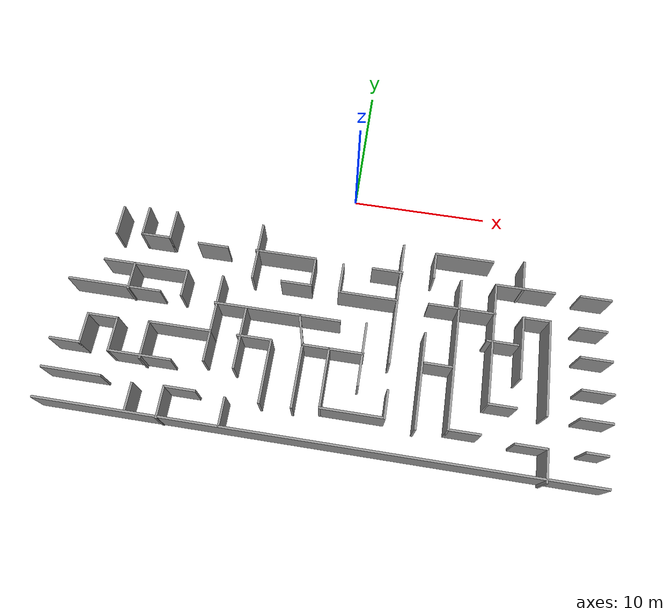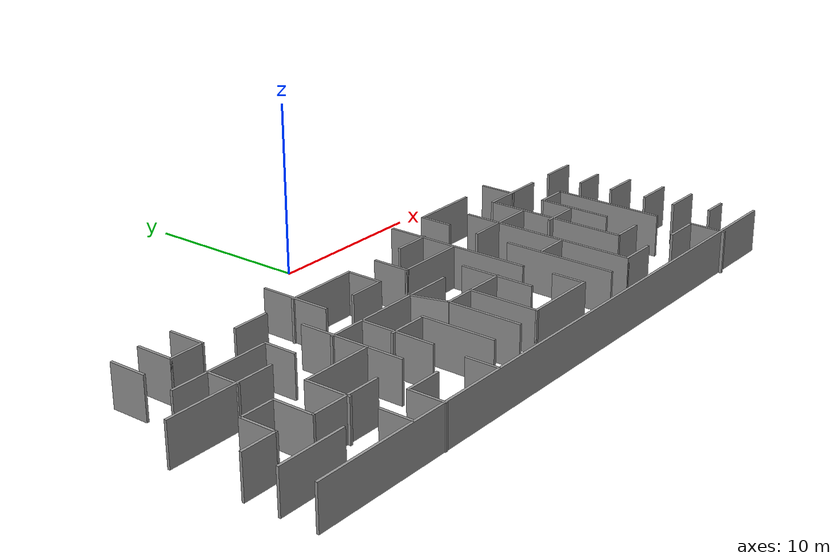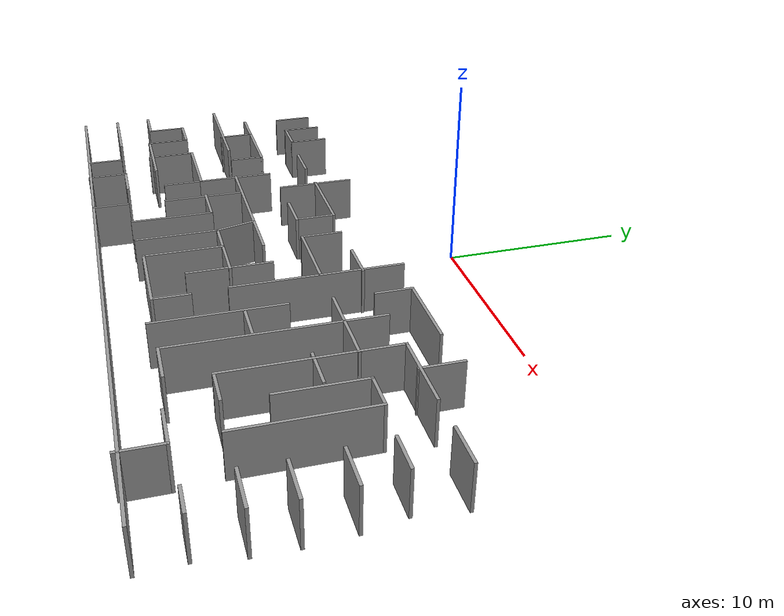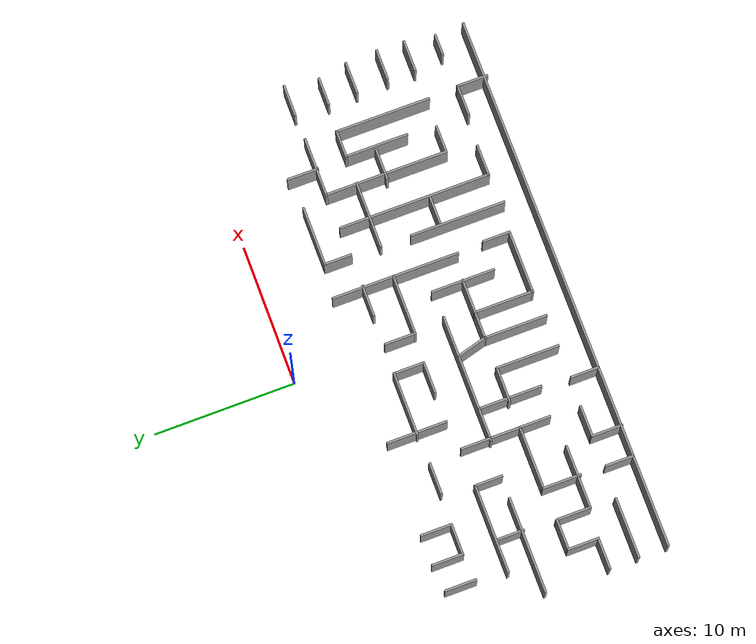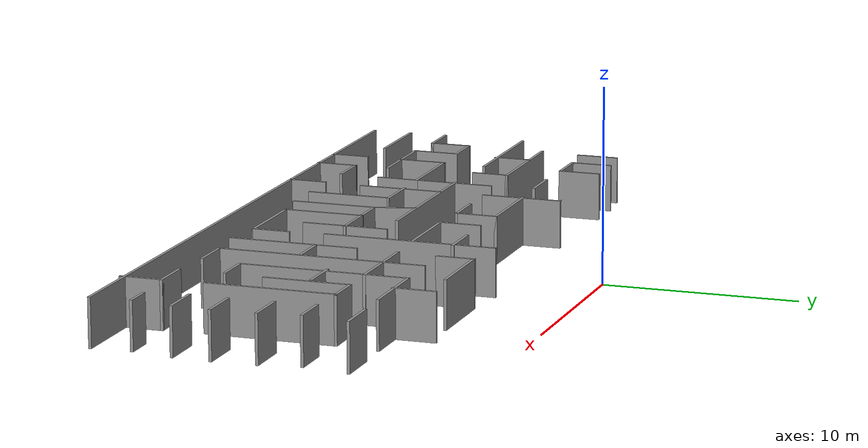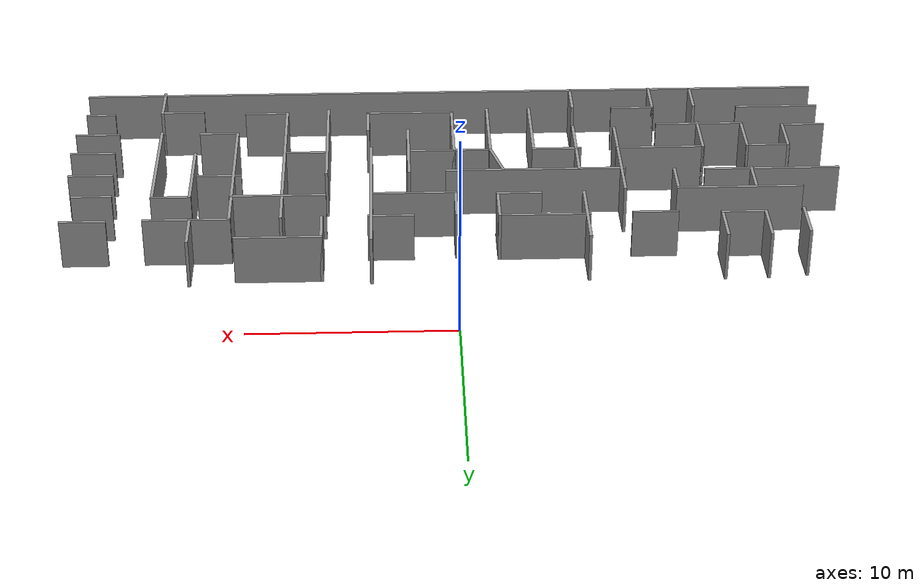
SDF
<sdf version="1.7">
 <model name="complex_maze">
  <pose>-0.002641 -0.038098 0 0 -0 0</pose>
  <link name="Wall_102">
   <collision name="Wall_102_Collision">
    <geometry><box><size>2.25 0.15 2.5</size></box></geometry>
    <pose>0 0 1.25 0 -0 0</pose>
   </collision>
   <visual name="Wall_102_Visual">
    <pose>0 0 1.25 0 -0 0</pose>
    <geometry><box><size>2.25 0.15 2.5</size></box></geometry>
    <material>
     <script><uri>file://media/materials/scripts/gazebo.material</uri><name>Gazebo/Grey</name></script>
     <ambient>1 1 1 1</ambient>
    </material>
    <meta><layer>0</layer></meta>
   </visual>
   <pose>17.9724 -6.21477 0 0 -0 0</pose>
  </link>
  <link name="Wall_104">
   <collision name="Wall_104_Collision">
    <geometry><box><size>2.25 0.15 2.5</size></box></geometry>
    <pose>0 0 1.25 0 -0 0</pose>
   </collision>
   <visual name="Wall_104_Visual">
    <pose>0 0 1.25 0 -0 0</pose>
    <geometry><box><size>2.25 0.15 2.5</size></box></geometry>
    <material>
     <script><uri>file://media/materials/scripts/gazebo.material</uri><name>Gazebo/Grey</name></script>
     <ambient>1 1 1 1</ambient>
    </material>
    <meta><layer>0</layer></meta>
   </visual>
   <pose>18.0336 -10.6809 0 0 -0 0</pose>
  </link>
  <link name="Wall_106">
   <collision name="Wall_106_Collision">
    <geometry><box><size>2.25 0.15 2.5</size></box></geometry>
    <pose>0 0 1.25 0 -0 0</pose>
   </collision>
   <visual name="Wall_106_Visual">
    <pose>0 0 1.25 0 -0 0</pose>
    <geometry><box><size>2.25 0.15 2.5</size></box></geometry>
    <material>
     <script><uri>file://media/materials/scripts/gazebo.material</uri><name>Gazebo/Grey</name></script>
     <ambient>1 1 1 1</ambient>
    </material>
    <meta><layer>0</layer></meta>
   </visual>
   <pose>18.1559 -12.9446 0 0 -0 0</pose>
  </link>
  <link name="Wall_108">
   <collision name="Wall_108_Collision">
    <geometry><box><size>2.25 0.15 2.5</size></box></geometry>
    <pose>0 0 1.25 0 -0 0</pose>
   </collision>
   <visual name="Wall_108_Visual">
    <pose>0 0 1.25 0 -0 0</pose>
    <geometry><box><size>2.25 0.15 2.5</size></box></geometry>
    <material>
     <script><uri>file://media/materials/scripts/gazebo.material</uri><name>Gazebo/Grey</name></script>
     <ambient>1 1 1 1</ambient>
    </material>
    <meta><layer>0</layer></meta>
   </visual>
   <pose>18.0947 -14.9024 0 0 -0 0</pose>
  </link>
  <link name="Wall_110">
   <collision name="Wall_110_Collision">
    <geometry><box><size>1.5 0.15 2.5</size></box></geometry>
    <pose>0 0 1.25 0 -0 0</pose>
   </collision>
   <visual name="Wall_110_Visual">
    <pose>0 0 1.25 0 -0 0</pose>
    <geometry><box><size>1.5 0.15 2.5</size></box></geometry>
    <material>
     <script><uri>file://media/materials/scripts/gazebo.material</uri><name>Gazebo/Grey</name></script>
     <ambient>1 1 1 1</ambient>
    </material>
    <meta><layer>0</layer></meta>
   </visual>
   <pose>18.148 -17.0437 0 0 -0 0</pose>
  </link>
  <link name="Wall_112">
   <collision name="Wall_112_Collision">
    <geometry><box><size>2 0.15 2.5</size></box></geometry>
    <pose>0 0 1.25 0 -0 0</pose>
   </collision>
   <visual name="Wall_112_Visual">
    <pose>0 0 1.25 0 -0 0</pose>
    <geometry><box><size>2 0.15 2.5</size></box></geometry>
    <material>
     <script><uri>file://media/materials/scripts/gazebo.material</uri><name>Gazebo/Grey</name></script>
     <ambient>1 1 1 1</ambient>
    </material>
    <meta><layer>0</layer></meta>
   </visual>
   <pose>17.7862 -8.60081 0 0 -0 0</pose>
  </link>
  <link name="Wall_114">
   <collision name="Wall_114_Collision">
    <geometry><box><size>2.25 0.15 2.5</size></box></geometry>
    <pose>0 0 1.25 0 -0 0</pose>
   </collision>
   <visual name="Wall_114_Visual">
    <pose>0 0 1.25 0 -0 0</pose>
    <geometry><box><size>2.25 0.15 2.5</size></box></geometry>
    <material>
     <script><uri>file://media/materials/scripts/gazebo.material</uri><name>Gazebo/Grey</name></script>
     <ambient>1 1 1 1</ambient>
    </material>
    <meta><layer>0</layer></meta>
   </visual>
   <pose>14.9646 -18.2574 0 0 -0 1.5708</pose>
  </link>
  <link name="Wall_115">
   <collision name="Wall_115_Collision">
    <geometry><box><size>2.25 0.15 2.5</size></box></geometry>
    <pose>0 0 1.25 0 -0 0</pose>
   </collision>
   <visual name="Wall_115_Visual">
    <pose>0 0 1.25 0 -0 0</pose>
    <geometry><box><size>2.25 0.15 2.5</size></box></geometry>
    <material>
     <script><uri>file://media/materials/scripts/gazebo.material</uri><name>Gazebo/Grey</name></script>
     <ambient>1 1 1 1</ambient>
    </material>
    <meta><layer>0</layer></meta>
   </visual>
   <pose>13.9146 -17.2074 0 0 -0 3.14159</pose>
  </link>
  <link name="Wall_117">
   <collision name="Wall_117_Collision">
    <geometry><box><size>2 0.15 2.5</size></box></geometry>
    <pose>0 0 1.25 0 -0 0</pose>
   </collision>
   <visual name="Wall_117_Visual">
    <pose>0 0 1.25 0 -0 0</pose>
    <geometry><box><size>2 0.15 2.5</size></box></geometry>
    <material>
     <script><uri>file://media/materials/scripts/gazebo.material</uri><name>Gazebo/Grey</name></script>
     <ambient>1 1 1 1</ambient>
    </material>
    <meta><layer>0</layer></meta>
   </visual>
   <pose>-6.45183 -18.144 0 0 -0 1.5708</pose>
  </link>
  <link name="Wall_119">
   <collision name="Wall_119_Collision">
    <geometry><box><size>2.25 0.15 2.5</size></box></geometry>
    <pose>0 0 1.25 0 -0 0</pose>
   </collision>
   <visual name="Wall_119_Visual">
    <pose>0 0 1.25 0 -0 0</pose>
    <geometry><box><size>2.25 0.15 2.5</size></box></geometry>
    <material>
     <script><uri>file://media/materials/scripts/gazebo.material</uri><name>Gazebo/Grey</name></script>
     <ambient>1 1 1 1</ambient>
    </material>
    <meta><layer>0</layer></meta>
   </visual>
   <pose>-10.639 -18.112 0 0 -0 1.5708</pose>
  </link>
  <link name="Wall_120">
   <collision name="Wall_120_Collision">
    <geometry><box><size>2.25 0.15 2.5</size></box></geometry>
    <pose>0 0 1.25 0 -0 0</pose>
   </collision>
   <visual name="Wall_120_Visual">
    <pose>0 0 1.25 0 -0 0</pose>
    <geometry><box><size>2.25 0.15 2.5</size></box></geometry>
    <material>
     <script><uri>file://media/materials/scripts/gazebo.material</uri><name>Gazebo/Grey</name></script>
     <ambient>1 1 1 1</ambient>
    </material>
    <meta><layer>0</layer></meta>
   </visual>
   <pose>-9.58898 -17.062 0 0 -0 0</pose>
  </link>
  <link name="Wall_122">
   <collision name="Wall_122_Collision">
    <geometry><box><size>2 0.15 2.5</size></box></geometry>
    <pose>0 0 1.25 0 -0 0</pose>
   </collision>
   <visual name="Wall_122_Visual">
    <pose>0 0 1.25 0 -0 0</pose>
    <geometry><box><size>2 0.15 2.5</size></box></geometry>
    <material>
     <script><uri>file://media/materials/scripts/gazebo.material</uri><name>Gazebo/Grey</name></script>
     <ambient>1 1 1 1</ambient>
    </material>
    <meta><layer>0</layer></meta>
   </visual>
   <pose>-12.8256 -18.144 0 0 -0 1.5708</pose>
  </link>
  <link name="Wall_124">
   <collision name="Wall_124_Collision">
    <geometry><box><size>4.25 0.15 2.5</size></box></geometry>
    <pose>0 0 1.25 0 -0 0</pose>
   </collision>
   <visual name="Wall_124_Visual">
    <pose>0 0 1.25 0 -0 0</pose>
    <geometry><box><size>4.25 0.15 2.5</size></box></geometry>
    <material>
     <script><uri>file://media/materials/scripts/gazebo.material</uri><name>Gazebo/Grey</name></script>
     <ambient>1 1 1 1</ambient>
    </material>
    <meta><layer>0</layer></meta>
   </visual>
   <pose>-17.1494 -17.0219 0 0 -0 0</pose>
  </link>
  <link name="Wall_126">
   <collision name="Wall_126_Collision">
    <geometry><box><size>2.25 0.15 2.5</size></box></geometry>
    <pose>0 0 1.25 0 -0 0</pose>
   </collision>
   <visual name="Wall_126_Visual">
    <pose>0 0 1.25 0 -0 0</pose>
    <geometry><box><size>2.25 0.15 2.5</size></box></geometry>
    <material>
     <script><uri>file://media/materials/scripts/gazebo.material</uri><name>Gazebo/Grey</name></script>
     <ambient>1 1 1 1</ambient>
    </material>
    <meta><layer>0</layer></meta>
   </visual>
   <pose>-18.1959 -14.9749 0 0 -0 0</pose>
  </link>
  <link name="Wall_127">
   <collision name="Wall_127_Collision">
    <geometry><box><size>2.25 0.15 2.5</size></box></geometry>
    <pose>0 0 1.25 0 -0 0</pose>
   </collision>
   <visual name="Wall_127_Visual">
    <pose>0 0 1.25 0 -0 0</pose>
    <geometry><box><size>2.25 0.15 2.5</size></box></geometry>
    <material>
     <script><uri>file://media/materials/scripts/gazebo.material</uri><name>Gazebo/Grey</name></script>
     <ambient>1 1 1 1</ambient>
    </material>
    <meta><layer>0</layer></meta>
   </visual>
   <pose>-17.1459 -13.9249 0 0 -0 1.5708</pose>
  </link>
  <link name="Wall_128">
   <collision name="Wall_128_Collision">
    <geometry><box><size>2.25 0.15 2.5</size></box></geometry>
    <pose>0 0 1.25 0 -0 0</pose>
   </collision>
   <visual name="Wall_128_Visual">
    <pose>0 0 1.25 0 -0 0</pose>
    <geometry><box><size>2.25 0.15 2.5</size></box></geometry>
    <material>
     <script><uri>file://media/materials/scripts/gazebo.material</uri><name>Gazebo/Grey</name></script>
     <ambient>1 1 1 1</ambient>
    </material>
    <meta><layer>0</layer></meta>
   </visual>
   <pose>-16.0959 -12.8749 0 0 -0 0</pose>
  </link>
  <link name="Wall_129">
   <collision name="Wall_129_Collision">
    <geometry><box><size>2.5 0.15 2.5</size></box></geometry>
    <pose>0 0 1.25 0 -0 0</pose>
   </collision>
   <visual name="Wall_129_Visual">
    <pose>0 0 1.25 0 -0 0</pose>
    <geometry><box><size>2.5 0.15 2.5</size></box></geometry>
    <material>
     <script><uri>file://media/materials/scripts/gazebo.material</uri><name>Gazebo/Grey</name></script>
     <ambient>1 1 1 1</ambient>
    </material>
    <meta><layer>0</layer></meta>
   </visual>
   <pose>-15.0459 -14.0499 0 0 -0 -1.5708</pose>
  </link>
  <link name="Wall_130">
   <collision name="Wall_130_Collision">
    <geometry><box><size>4.5 0.15 2.5</size></box></geometry>
    <pose>0 0 1.25 0 -0 0</pose>
   </collision>
   <visual name="Wall_130_Visual">
    <pose>0 0 1.25 0 -0 0</pose>
    <geometry><box><size>4.5 0.15 2.5</size></box></geometry>
    <material>
     <script><uri>file://media/materials/scripts/gazebo.material</uri><name>Gazebo/Grey</name></script>
     <ambient>1 1 1 1</ambient>
    </material>
    <meta><layer>0</layer></meta>
   </visual>
   <pose>-12.8709 -15.2249 0 0 -0 0</pose>
  </link>
  <link name="Wall_132">
   <collision name="Wall_132_Collision">
    <geometry><box><size>2.75 0.15 2.5</size></box></geometry>
    <pose>0 0 1.25 0 -0 0</pose>
   </collision>
   <visual name="Wall_132_Visual">
    <pose>0 0 1.25 0 -0 0</pose>
    <geometry><box><size>2.75 0.15 2.5</size></box></geometry>
    <material>
     <script><uri>file://media/materials/scripts/gazebo.material</uri><name>Gazebo/Grey</name></script>
     <ambient>1 1 1 1</ambient>
    </material>
    <meta><layer>0</layer></meta>
   </visual>
   <pose>-12.7791 -14.0936 0 0 -0 1.5708</pose>
  </link>
  <link name="Wall_133">
   <collision name="Wall_133_Collision">
    <geometry><box><size>4.5 0.15 2.5</size></box></geometry>
    <pose>0 0 1.25 0 -0 0</pose>
   </collision>
   <visual name="Wall_133_Visual">
    <pose>0 0 1.25 0 -0 0</pose>
    <geometry><box><size>4.5 0.15 2.5</size></box></geometry>
    <material>
     <script><uri>file://media/materials/scripts/gazebo.material</uri><name>Gazebo/Grey</name></script>
     <ambient>1 1 1 1</ambient>
    </material>
    <meta><layer>0</layer></meta>
   </visual>
   <pose>-10.6041 -12.7936 0 0 -0 0</pose>
  </link>
  <link name="Wall_134">
   <collision name="Wall_134_Collision">
    <geometry><box><size>4.25 0.15 2.5</size></box></geometry>
    <pose>0 0 1.25 0 -0 0</pose>
   </collision>
   <visual name="Wall_134_Visual">
    <pose>0 0 1.25 0 -0 0</pose>
    <geometry><box><size>4.25 0.15 2.5</size></box></geometry>
    <material>
     <script><uri>file://media/materials/scripts/gazebo.material</uri><name>Gazebo/Grey</name></script>
     <ambient>1 1 1 1</ambient>
    </material>
    <meta><layer>0</layer></meta>
   </visual>
   <pose>-8.42908 -10.7436 0 0 -0 1.5708</pose>
  </link>
  <link name="Wall_136">
   <collision name="Wall_136_Collision">
    <geometry><box><size>2.25 0.15 2.5</size></box></geometry>
    <pose>0 0 1.25 0 -0 0</pose>
   </collision>
   <visual name="Wall_136_Visual">
    <pose>0 0 1.25 0 -0 0</pose>
    <geometry><box><size>2.25 0.15 2.5</size></box></geometry>
    <material>
     <script><uri>file://media/materials/scripts/gazebo.material</uri><name>Gazebo/Grey</name></script>
     <ambient>1 1 1 1</ambient>
    </material>
    <meta><layer>0</layer></meta>
   </visual>
   <pose>-8.42908 -13.8436 0 0 -0 -1.5708</pose>
  </link>
  <link name="Wall_138">
   <collision name="Wall_138_Collision">
    <geometry><box><size>9 0.15 2.5</size></box></geometry>
    <pose>0 0 1.25 0 -0 0</pose>
   </collision>
   <visual name="Wall_138_Visual">
    <pose>0 0 1.25 0 -0 0</pose>
    <geometry><box><size>9 0.15 2.5</size></box></geometry>
    <material>
     <script><uri>file://media/materials/scripts/gazebo.material</uri><name>Gazebo/Grey</name></script>
     <ambient>1 1 1 1</ambient>
    </material>
    <meta><layer>0</layer></meta>
   </visual>
   <pose>-4.1204 -10.6947 0 0 -0 0</pose>
  </link>
  <link name="Wall_140">
   <collision name="Wall_140_Collision">
    <geometry><box><size>2 0.15 2.5</size></box></geometry>
    <pose>0 0 1.25 0 -0 0</pose>
   </collision>
   <visual name="Wall_140_Visual">
    <pose>0 0 1.25 0 -0 0</pose>
    <geometry><box><size>2 0.15 2.5</size></box></geometry>
    <material>
     <script><uri>file://media/materials/scripts/gazebo.material</uri><name>Gazebo/Grey</name></script>
     <ambient>1 1 1 1</ambient>
    </material>
    <meta><layer>0</layer></meta>
   </visual>
   <pose>4.24868 -15.9464 0 0 -0 -1.5708</pose>
  </link>
  <link name="Wall_141">
   <collision name="Wall_141_Collision">
    <geometry><box><size>4.5 0.15 2.5</size></box></geometry>
    <pose>0 0 1.25 0 -0 0</pose>
   </collision>
   <visual name="Wall_141_Visual">
    <pose>0 0 1.25 0 -0 0</pose>
    <geometry><box><size>4.5 0.15 2.5</size></box></geometry>
    <material>
     <script><uri>file://media/materials/scripts/gazebo.material</uri><name>Gazebo/Grey</name></script>
     <ambient>1 1 1 1</ambient>
    </material>
    <meta><layer>0</layer></meta>
   </visual>
   <pose>2.07368 -16.8714 0 0 -0 3.14159</pose>
  </link>
  <link name="Wall_142">
   <collision name="Wall_142_Collision">
    <geometry><box><size>4.25 0.15 2.5</size></box></geometry>
    <pose>0 0 1.25 0 -0 0</pose>
   </collision>
   <visual name="Wall_142_Visual">
    <pose>0 0 1.25 0 -0 0</pose>
    <geometry><box><size>4.25 0.15 2.5</size></box></geometry>
    <material>
     <script><uri>file://media/materials/scripts/gazebo.material</uri><name>Gazebo/Grey</name></script>
     <ambient>1 1 1 1</ambient>
    </material>
    <meta><layer>0</layer></meta>
   </visual>
   <pose>-0.101325 -14.8214 0 0 -0 1.5708</pose>
  </link>
  <link name="Wall_143">
   <collision name="Wall_143_Collision">
    <geometry><box><size>2 0.15 2.5</size></box></geometry>
    <pose>0 0 1.25 0 -0 0</pose>
   </collision>
   <visual name="Wall_143_Visual">
    <pose>0 0 1.25 0 -0 0</pose>
    <geometry><box><size>2 0.15 2.5</size></box></geometry>
    <material>
     <script><uri>file://media/materials/scripts/gazebo.material</uri><name>Gazebo/Grey</name></script>
     <ambient>1 1 1 1</ambient>
    </material>
    <meta><layer>0</layer></meta>
   </visual>
   <pose>-1.02632 -12.7714 0 0 -0 3.14159</pose>
  </link>
  <link name="Wall_144">
   <collision name="Wall_144_Collision">
    <geometry><box><size>2.25 0.15 2.5</size></box></geometry>
    <pose>0 0 1.25 0 -0 0</pose>
   </collision>
   <visual name="Wall_144_Visual">
    <pose>0 0 1.25 0 -0 0</pose>
    <geometry><box><size>2.25 0.15 2.5</size></box></geometry>
    <material>
     <script><uri>file://media/materials/scripts/gazebo.material</uri><name>Gazebo/Grey</name></script>
     <ambient>1 1 1 1</ambient>
    </material>
    <meta><layer>0</layer></meta>
   </visual>
   <pose>-2.22309 -11.7572 0 0 -0 1.8326</pose>
  </link>
  <link name="Wall_146">
   <collision name="Wall_146_Collision">
    <geometry><box><size>4.5 0.15 2.5</size></box></geometry>
    <pose>0 0 1.25 0 -0 0</pose>
   </collision>
   <visual name="Wall_146_Visual">
    <pose>0 0 1.25 0 -0 0</pose>
    <geometry><box><size>4.5 0.15 2.5</size></box></geometry>
    <material>
     <script><uri>file://media/materials/scripts/gazebo.material</uri><name>Gazebo/Grey</name></script>
     <ambient>1 1 1 1</ambient>
    </material>
    <meta><layer>0</layer></meta>
   </visual>
   <pose>-1.95132 -14.9464 0 0 -0 -1.5708</pose>
  </link>
  <link name="Wall_148">
   <collision name="Wall_148_Collision">
    <geometry><box><size>4.5 0.15 2.5</size></box></geometry>
    <pose>0 0 1.25 0 -0 0</pose>
   </collision>
   <visual name="Wall_148_Visual">
    <pose>0 0 1.25 0 -0 0</pose>
    <geometry><box><size>4.5 0.15 2.5</size></box></geometry>
    <material>
     <script><uri>file://media/materials/scripts/gazebo.material</uri><name>Gazebo/Grey</name></script>
     <ambient>1 1 1 1</ambient>
    </material>
    <meta><layer>0</layer></meta>
   </visual>
   <pose>2.20162 -12.7766 0 0 -0 -1.5708</pose>
  </link>
  <link name="Wall_150">
   <collision name="Wall_150_Collision">
    <geometry><box><size>2.5 0.15 2.5</size></box></geometry>
    <pose>0 0 1.25 0 -0 0</pose>
   </collision>
   <visual name="Wall_150_Visual">
    <pose>0 0 1.25 0 -0 0</pose>
    <geometry><box><size>2.5 0.15 2.5</size></box></geometry>
    <material>
     <script><uri>file://media/materials/scripts/gazebo.material</uri><name>Gazebo/Grey</name></script>
     <ambient>1 1 1 1</ambient>
    </material>
    <meta><layer>0</layer></meta>
   </visual>
   <pose>1.07367 -12.7714 0 0 -0 0</pose>
  </link>
  <link name="Wall_152">
   <collision name="Wall_152_Collision">
    <geometry><box><size>4.5 0.15 2.5</size></box></geometry>
    <pose>0 0 1.25 0 -0 0</pose>
   </collision>
   <visual name="Wall_152_Visual">
    <pose>0 0 1.25 0 -0 0</pose>
    <geometry><box><size>4.5 0.15 2.5</size></box></geometry>
    <material>
     <script><uri>file://media/materials/scripts/gazebo.material</uri><name>Gazebo/Grey</name></script>
     <ambient>1 1 1 1</ambient>
    </material>
    <meta><layer>0</layer></meta>
   </visual>
   <pose>-6.31225 -12.9162 0 0 -0 -1.5708</pose>
  </link>
  <link name="Wall_154">
   <collision name="Wall_154_Collision">
    <geometry><box><size>2.5 0.15 2.5</size></box></geometry>
    <pose>0 0 1.25 0 -0 0</pose>
   </collision>
   <visual name="Wall_154_Visual">
    <pose>0 0 1.25 0 -0 0</pose>
    <geometry><box><size>2.5 0.15 2.5</size></box></geometry>
    <material>
     <script><uri>file://media/materials/scripts/gazebo.material</uri><name>Gazebo/Grey</name></script>
     <ambient>1 1 1 1</ambient>
    </material>
    <meta><layer>0</layer></meta>
   </visual>
   <pose>-5.32335 -12.7882 0 0 -0 0</pose>
  </link>
  <link name="Wall_155">
   <collision name="Wall_155_Collision">
    <geometry><box><size>4.5 0.15 2.5</size></box></geometry>
    <pose>0 0 1.25 0 -0 0</pose>
   </collision>
   <visual name="Wall_155_Visual">
    <pose>0 0 1.25 0 -0 0</pose>
    <geometry><box><size>4.5 0.15 2.5</size></box></geometry>
    <material>
     <script><uri>file://media/materials/scripts/gazebo.material</uri><name>Gazebo/Grey</name></script>
     <ambient>1 1 1 1</ambient>
    </material>
    <meta><layer>0</layer></meta>
   </visual>
   <pose>-4.14835 -14.9632 0 0 -0 -1.5708</pose>
  </link>
  <link name="Wall_157">
   <collision name="Wall_157_Collision">
    <geometry><box><size>6.75 0.15 2.5</size></box></geometry>
    <pose>0 0 1.25 0 -0 0</pose>
   </collision>
   <visual name="Wall_157_Visual">
    <pose>0 0 1.25 0 -0 0</pose>
    <geometry><box><size>6.75 0.15 2.5</size></box></geometry>
    <material>
     <script><uri>file://media/materials/scripts/gazebo.material</uri><name>Gazebo/Grey</name></script>
     <ambient>1 1 1 1</ambient>
    </material>
    <meta><layer>0</layer></meta>
   </visual>
   <pose>-15.9459 -10.462 0 0 -0 0</pose>
  </link>
  <link name="Wall_159">
   <collision name="Wall_159_Collision">
    <geometry><box><size>2 0.15 2.5</size></box></geometry>
    <pose>0 0 1.25 0 -0 0</pose>
   </collision>
   <visual name="Wall_159_Visual">
    <pose>0 0 1.25 0 -0 0</pose>
    <geometry><box><size>2 0.15 2.5</size></box></geometry>
    <material>
     <script><uri>file://media/materials/scripts/gazebo.material</uri><name>Gazebo/Grey</name></script>
     <ambient>1 1 1 1</ambient>
    </material>
    <meta><layer>0</layer></meta>
   </visual>
   <pose>-14.9192 -9.6301 0 0 -0 1.5708</pose>
  </link>
  <link name="Wall_161">
   <collision name="Wall_161_Collision">
    <geometry><box><size>6.25 0.15 2.5</size></box></geometry>
    <pose>0 0 1.25 0 -0 0</pose>
   </collision>
   <visual name="Wall_161_Visual">
    <pose>0 0 1.25 0 -0 0</pose>
    <geometry><box><size>6.25 0.15 2.5</size></box></geometry>
    <material>
     <script><uri>file://media/materials/scripts/gazebo.material</uri><name>Gazebo/Grey</name></script>
     <ambient>1 1 1 1</ambient>
    </material>
    <meta><layer>0</layer></meta>
   </visual>
   <pose>-14.1023 -8.64762 0 0 -0 0</pose>
  </link>
  <link name="Wall_162">
   <collision name="Wall_162_Collision">
    <geometry><box><size>2 0.15 2.5</size></box></geometry>
    <pose>0 0 1.25 0 -0 0</pose>
   </collision>
   <visual name="Wall_162_Visual">
    <pose>0 0 1.25 0 -0 0</pose>
    <geometry><box><size>2 0.15 2.5</size></box></geometry>
    <material>
     <script><uri>file://media/materials/scripts/gazebo.material</uri><name>Gazebo/Grey</name></script>
     <ambient>1 1 1 1</ambient>
    </material>
    <meta><layer>0</layer></meta>
   </visual>
   <pose>-11.0523 -9.57262 0 0 -0 -1.5708</pose>
  </link>
  <link name="Wall_165">
   <collision name="Wall_165_Collision">
    <geometry><box><size>2.25 0.15 2.5</size></box></geometry>
    <pose>0 0 1.25 0 -0 0</pose>
   </collision>
   <visual name="Wall_165_Visual">
    <pose>0 0 1.25 0 -0 0</pose>
    <geometry><box><size>2.25 0.15 2.5</size></box></geometry>
    <material>
     <script><uri>file://media/materials/scripts/gazebo.material</uri><name>Gazebo/Grey</name></script>
     <ambient>1 1 1 1</ambient>
    </material>
    <meta><layer>0</layer></meta>
   </visual>
   <pose>-16.8959 -5.41742 0 0 -0 -1.5708</pose>
  </link>
  <link name="Wall_181">
   <collision name="Wall_181_Collision">
    <geometry><box><size>2.25 0.15 2.5</size></box></geometry>
    <pose>0 0 1.25 0 -0 0</pose>
   </collision>
   <visual name="Wall_181_Visual">
    <pose>0 0 1.25 0 -0 0</pose>
    <geometry><box><size>2.25 0.15 2.5</size></box></geometry>
    <material>
     <script><uri>file://media/materials/scripts/gazebo.material</uri><name>Gazebo/Grey</name></script>
     <ambient>1 1 1 1</ambient>
    </material>
    <meta><layer>0</layer></meta>
   </visual>
   <pose>-9.68348 -6.36279 0 0 -0 3.14159</pose>
  </link>
  <link name="Wall_183">
   <collision name="Wall_183_Collision">
    <geometry><box><size>2.25 0.15 2.5</size></box></geometry>
    <pose>0 0 1.25 0 -0 0</pose>
   </collision>
   <visual name="Wall_183_Visual">
    <pose>0 0 1.25 0 -0 0</pose>
    <geometry><box><size>2.25 0.15 2.5</size></box></geometry>
    <material>
     <script><uri>file://media/materials/scripts/gazebo.material</uri><name>Gazebo/Grey</name></script>
     <ambient>1 1 1 1</ambient>
    </material>
    <meta><layer>0</layer></meta>
   </visual>
   <pose>-15.0137 -5.21035 0 0 -0 -1.5708</pose>
  </link>
  <link name="Wall_184">
   <collision name="Wall_184_Collision">
    <geometry><box><size>2.25 0.15 2.5</size></box></geometry>
    <pose>0 0 1.25 0 -0 0</pose>
   </collision>
   <visual name="Wall_184_Visual">
    <pose>0 0 1.25 0 -0 0</pose>
    <geometry><box><size>2.25 0.15 2.5</size></box></geometry>
    <material>
     <script><uri>file://media/materials/scripts/gazebo.material</uri><name>Gazebo/Grey</name></script>
     <ambient>1 1 1 1</ambient>
    </material>
    <meta><layer>0</layer></meta>
   </visual>
   <pose>-13.9637 -6.26035 0 0 -0 0</pose>
  </link>
  <link name="Wall_185">
   <collision name="Wall_185_Collision">
    <geometry><box><size>2.25 0.15 2.5</size></box></geometry>
    <pose>0 0 1.25 0 -0 0</pose>
   </collision>
   <visual name="Wall_185_Visual">
    <pose>0 0 1.25 0 -0 0</pose>
    <geometry><box><size>2.25 0.15 2.5</size></box></geometry>
    <material>
     <script><uri>file://media/materials/scripts/gazebo.material</uri><name>Gazebo/Grey</name></script>
     <ambient>1 1 1 1</ambient>
    </material>
    <meta><layer>0</layer></meta>
   </visual>
   <pose>-12.9137 -5.21035 0 0 -0 1.5708</pose>
  </link>
  <link name="Wall_2">
   <collision name="Wall_2_Collision">
    <geometry><box><size>38.25 0.15 2.5</size></box></geometry>
    <pose>0 0 1.25 0 -0 0</pose>
   </collision>
   <visual name="Wall_2_Visual">
    <pose>0 0 1.25 0 -0 0</pose>
    <geometry><box><size>38.25 0.15 2.5</size></box></geometry>
    <material>
     <script><uri>file://media/materials/scripts/gazebo.material</uri><name>Gazebo/Grey</name></script>
     <ambient>1 1 1 1</ambient>
    </material>
    <meta><layer>0</layer></meta>
   </visual>
   <pose>-0.114307 -19.1166 0 0 -0 0</pose>
  </link>
  <link name="Wall_221">
   <collision name="Wall_221_Collision">
    <geometry><box><size>9 0.15 2.5</size></box></geometry>
    <pose>0 0 1.25 0 -0 0</pose>
   </collision>
   <visual name="Wall_221_Visual">
    <pose>0 0 1.25 0 -0 0</pose>
    <geometry><box><size>9 0.15 2.5</size></box></geometry>
    <material>
     <script><uri>file://media/materials/scripts/gazebo.material</uri><name>Gazebo/Grey</name></script>
     <ambient>1 1 1 1</ambient>
    </material>
    <meta><layer>0</layer></meta>
   </visual>
   <pose>4.09867 -8.67049 0 0 -0 -1.5708</pose>
  </link>
  <link name="Wall_223">
   <collision name="Wall_223_Collision">
    <geometry><box><size>2.25 0.15 2.5</size></box></geometry>
    <pose>0 0 1.25 0 -0 0</pose>
   </collision>
   <visual name="Wall_223_Visual">
    <pose>0 0 1.25 0 -0 0</pose>
    <geometry><box><size>2.25 0.15 2.5</size></box></geometry>
    <material>
     <script><uri>file://media/materials/scripts/gazebo.material</uri><name>Gazebo/Grey</name></script>
     <ambient>1 1 1 1</ambient>
    </material>
    <meta><layer>0</layer></meta>
   </visual>
   <pose>3.14228 -6.37219 0 0 -0 0</pose>
  </link>
  <link name="Wall_225">
   <collision name="Wall_225_Collision">
    <geometry><box><size>2.25 0.15 2.5</size></box></geometry>
    <pose>0 0 1.25 0 -0 0</pose>
   </collision>
   <visual name="Wall_225_Visual">
    <pose>0 0 1.25 0 -0 0</pose>
    <geometry><box><size>2.25 0.15 2.5</size></box></geometry>
    <material>
     <script><uri>file://media/materials/scripts/gazebo.material</uri><name>Gazebo/Grey</name></script>
     <ambient>1 1 1 1</ambient>
    </material>
    <meta><layer>0</layer></meta>
   </visual>
   <pose>-0.047825 -7.47569 0 0 -0 -1.5708</pose>
  </link>
  <link name="Wall_226">
   <collision name="Wall_226_Collision">
    <geometry><box><size>4.25 0.15 2.5</size></box></geometry>
    <pose>0 0 1.25 0 -0 0</pose>
   </collision>
   <visual name="Wall_226_Visual">
    <pose>0 0 1.25 0 -0 0</pose>
    <geometry><box><size>4.25 0.15 2.5</size></box></geometry>
    <material>
     <script><uri>file://media/materials/scripts/gazebo.material</uri><name>Gazebo/Grey</name></script>
     <ambient>1 1 1 1</ambient>
    </material>
    <meta><layer>0</layer></meta>
   </visual>
   <pose>2.00217 -8.52569 0 0 -0 0</pose>
  </link>
  <link name="Wall_242">
   <collision name="Wall_242_Collision">
    <geometry><box><size>4.25 0.15 2.5</size></box></geometry>
    <pose>0 0 1.25 0 -0 0</pose>
   </collision>
   <visual name="Wall_242_Visual">
    <pose>0 0 1.25 0 -0 0</pose>
    <geometry><box><size>4.25 0.15 2.5</size></box></geometry>
    <material>
     <script><uri>file://media/materials/scripts/gazebo.material</uri><name>Gazebo/Grey</name></script>
     <ambient>1 1 1 1</ambient>
    </material>
    <meta><layer>0</layer></meta>
   </visual>
   <pose>-6.36112 -6.30178 0 0 -0 1.5708</pose>
  </link>
  <link name="Wall_245">
   <collision name="Wall_245_Collision">
    <geometry><box><size>4.5 0.15 2.5</size></box></geometry>
    <pose>0 0 1.25 0 -0 0</pose>
   </collision>
   <visual name="Wall_245_Visual">
    <pose>0 0 1.25 0 -0 0</pose>
    <geometry><box><size>4.5 0.15 2.5</size></box></geometry>
    <material>
     <script><uri>file://media/materials/scripts/gazebo.material</uri><name>Gazebo/Grey</name></script>
     <ambient>1 1 1 1</ambient>
    </material>
    <meta><layer>0</layer></meta>
   </visual>
   <pose>-4.29312 -6.26518 0 0 -0 0</pose>
  </link>
  <link name="Wall_246">
   <collision name="Wall_246_Collision">
    <geometry><box><size>2.25 0.15 2.5</size></box></geometry>
    <pose>0 0 1.25 0 -0 0</pose>
   </collision>
   <visual name="Wall_246_Visual">
    <pose>0 0 1.25 0 -0 0</pose>
    <geometry><box><size>2.25 0.15 2.5</size></box></geometry>
    <material>
     <script><uri>file://media/materials/scripts/gazebo.material</uri><name>Gazebo/Grey</name></script>
     <ambient>1 1 1 1</ambient>
    </material>
    <meta><layer>0</layer></meta>
   </visual>
   <pose>-2.11813 -7.31518 0 0 -0 -1.5708</pose>
  </link>
  <link name="Wall_247">
   <collision name="Wall_247_Collision">
    <geometry><box><size>2.25 0.15 2.5</size></box></geometry>
    <pose>0 0 1.25 0 -0 0</pose>
   </collision>
   <visual name="Wall_247_Visual">
    <pose>0 0 1.25 0 -0 0</pose>
    <geometry><box><size>2.25 0.15 2.5</size></box></geometry>
    <material>
     <script><uri>file://media/materials/scripts/gazebo.material</uri><name>Gazebo/Grey</name></script>
     <ambient>1 1 1 1</ambient>
    </material>
    <meta><layer>0</layer></meta>
   </visual>
   <pose>-3.16812 -8.36519 0 0 -0 3.14159</pose>
  </link>
  <link name="Wall_267">
   <collision name="Wall_267_Collision">
    <geometry><box><size>2 0.15 2.5</size></box></geometry>
    <pose>0 0 1.25 0 -0 0</pose>
   </collision>
   <visual name="Wall_267_Visual">
    <pose>0 0 1.25 0 -0 0</pose>
    <geometry><box><size>2 0.15 2.5</size></box></geometry>
    <material>
     <script><uri>file://media/materials/scripts/gazebo.material</uri><name>Gazebo/Grey</name></script>
     <ambient>1 1 1 1</ambient>
    </material>
    <meta><layer>0</layer></meta>
   </visual>
   <pose>6.47948 -5.44719 0 0 -0 1.5708</pose>
  </link>
  <link name="Wall_268">
   <collision name="Wall_268_Collision">
    <geometry><box><size>4.25 0.15 2.5</size></box></geometry>
    <pose>0 0 1.25 0 -0 0</pose>
   </collision>
   <visual name="Wall_268_Visual">
    <pose>0 0 1.25 0 -0 0</pose>
    <geometry><box><size>4.25 0.15 2.5</size></box></geometry>
    <material>
     <script><uri>file://media/materials/scripts/gazebo.material</uri><name>Gazebo/Grey</name></script>
     <ambient>1 1 1 1</ambient>
    </material>
    <meta><layer>0</layer></meta>
   </visual>
   <pose>8.52948 -4.52219 0 0 -0 0</pose>
  </link>
  <link name="Wall_271">
   <collision name="Wall_271_Collision">
    <geometry><box><size>2.25 0.15 2.5</size></box></geometry>
    <pose>0 0 1.25 0 -0 0</pose>
   </collision>
   <visual name="Wall_271_Visual">
    <pose>0 0 1.25 0 -0 0</pose>
    <geometry><box><size>2.25 0.15 2.5</size></box></geometry>
    <material>
     <script><uri>file://media/materials/scripts/gazebo.material</uri><name>Gazebo/Grey</name></script>
     <ambient>1 1 1 1</ambient>
    </material>
    <meta><layer>0</layer></meta>
   </visual>
   <pose>12.8329 -5.28209 0 0 -0 -1.5708</pose>
  </link>
  <link name="Wall_273">
   <collision name="Wall_273_Collision">
    <geometry><box><size>4.25 0.15 2.5</size></box></geometry>
    <pose>0 0 1.25 0 -0 0</pose>
   </collision>
   <visual name="Wall_273_Visual">
    <pose>0 0 1.25 0 -0 0</pose>
    <geometry><box><size>4.25 0.15 2.5</size></box></geometry>
    <material>
     <script><uri>file://media/materials/scripts/gazebo.material</uri><name>Gazebo/Grey</name></script>
     <ambient>1 1 1 1</ambient>
    </material>
    <meta><layer>0</layer></meta>
   </visual>
   <pose>12.9899 -6.26518 0 0 -0 3.14159</pose>
  </link>
  <link name="Wall_274">
   <collision name="Wall_274_Collision">
    <geometry><box><size>8.75 0.15 2.5</size></box></geometry>
    <pose>0 0 1.25 0 -0 0</pose>
   </collision>
   <visual name="Wall_274_Visual">
    <pose>0 0 1.25 0 -0 0</pose>
    <geometry><box><size>8.75 0.15 2.5</size></box></geometry>
    <material>
     <script><uri>file://media/materials/scripts/gazebo.material</uri><name>Gazebo/Grey</name></script>
     <ambient>1 1 1 1</ambient>
    </material>
    <meta><layer>0</layer></meta>
   </visual>
   <pose>10.9399 -10.5652 0 0 -0 -1.5708</pose>
  </link>
  <link name="Wall_275">
   <collision name="Wall_275_Collision">
    <geometry><box><size>2 0.15 2.5</size></box></geometry>
    <pose>0 0 1.25 0 -0 0</pose>
   </collision>
   <visual name="Wall_275_Visual">
    <pose>0 0 1.25 0 -0 0</pose>
    <geometry><box><size>2 0.15 2.5</size></box></geometry>
    <material>
     <script><uri>file://media/materials/scripts/gazebo.material</uri><name>Gazebo/Grey</name></script>
     <ambient>1 1 1 1</ambient>
    </material>
    <meta><layer>0</layer></meta>
   </visual>
   <pose>11.8649 -14.8652 0 0 -0 0</pose>
  </link>
  <link name="Wall_277">
   <collision name="Wall_277_Collision">
    <geometry><box><size>6.75 0.15 2.5</size></box></geometry>
    <pose>0 0 1.25 0 -0 0</pose>
   </collision>
   <visual name="Wall_277_Visual">
    <pose>0 0 1.25 0 -0 0</pose>
    <geometry><box><size>6.75 0.15 2.5</size></box></geometry>
    <material>
     <script><uri>file://media/materials/scripts/gazebo.material</uri><name>Gazebo/Grey</name></script>
     <ambient>1 1 1 1</ambient>
    </material>
    <meta><layer>0</layer></meta>
   </visual>
   <pose>14.8259 -11.7396 0 0 -0 1.5708</pose>
  </link>
  <link name="Wall_278">
   <collision name="Wall_278_Collision">
    <geometry><box><size>2 0.15 2.5</size></box></geometry>
    <pose>0 0 1.25 0 -0 0</pose>
   </collision>
   <visual name="Wall_278_Visual">
    <pose>0 0 1.25 0 -0 0</pose>
    <geometry><box><size>2 0.15 2.5</size></box></geometry>
    <material>
     <script><uri>file://media/materials/scripts/gazebo.material</uri><name>Gazebo/Grey</name></script>
     <ambient>1 1 1 1</ambient>
    </material>
    <meta><layer>0</layer></meta>
   </visual>
   <pose>13.9009 -8.43959 0 0 -0 3.14159</pose>
  </link>
  <link name="Wall_279">
   <collision name="Wall_279_Collision">
    <geometry><box><size>4.5 0.15 2.5</size></box></geometry>
    <pose>0 0 1.25 0 -0 0</pose>
   </collision>
   <visual name="Wall_279_Visual">
    <pose>0 0 1.25 0 -0 0</pose>
    <geometry><box><size>4.5 0.15 2.5</size></box></geometry>
    <material>
     <script><uri>file://media/materials/scripts/gazebo.material</uri><name>Gazebo/Grey</name></script>
     <ambient>1 1 1 1</ambient>
    </material>
    <meta><layer>0</layer></meta>
   </visual>
   <pose>12.9759 -10.6146 0 0 -0 -1.5708</pose>
  </link>
  <link name="Wall_281">
   <collision name="Wall_281_Collision">
    <geometry><box><size>2.25 0.15 2.5</size></box></geometry>
    <pose>0 0 1.25 0 -0 0</pose>
   </collision>
   <visual name="Wall_281_Visual">
    <pose>0 0 1.25 0 -0 0</pose>
    <geometry><box><size>2.25 0.15 2.5</size></box></geometry>
    <material>
     <script><uri>file://media/materials/scripts/gazebo.material</uri><name>Gazebo/Grey</name></script>
     <ambient>1 1 1 1</ambient>
    </material>
    <meta><layer>0</layer></meta>
   </visual>
   <pose>11.6492 -10.4919 0 0 -0 0</pose>
  </link>
  <link name="Wall_283">
   <collision name="Wall_283_Collision">
    <geometry><box><size>4.75 0.15 2.5</size></box></geometry>
    <pose>0 0 1.25 0 -0 0</pose>
   </collision>
   <visual name="Wall_283_Visual">
    <pose>0 0 1.25 0 -0 0</pose>
    <geometry><box><size>4.75 0.15 2.5</size></box></geometry>
    <material>
     <script><uri>file://media/materials/scripts/gazebo.material</uri><name>Gazebo/Grey</name></script>
     <ambient>1 1 1 1</ambient>
    </material>
    <meta><layer>0</layer></meta>
   </visual>
   <pose>8.67369 -8.45879 0 0 -0 3.14159</pose>
  </link>
  <link name="Wall_285">
   <collision name="Wall_285_Collision">
    <geometry><box><size>10.75 0.15 2.5</size></box></geometry>
    <pose>0 0 1.25 0 -0 0</pose>
   </collision>
   <visual name="Wall_285_Visual">
    <pose>0 0 1.25 0 -0 0</pose>
    <geometry><box><size>10.75 0.15 2.5</size></box></geometry>
    <material>
     <script><uri>file://media/materials/scripts/gazebo.material</uri><name>Gazebo/Grey</name></script>
     <ambient>1 1 1 1</ambient>
    </material>
    <meta><layer>0</layer></meta>
   </visual>
   <pose>8.45907 -11.6722 0 0 -0 -1.5708</pose>
  </link>
  <link name="Wall_286">
   <collision name="Wall_286_Collision">
    <geometry><box><size>2.25 0.15 2.5</size></box></geometry>
    <pose>0 0 1.25 0 -0 0</pose>
   </collision>
   <visual name="Wall_286_Visual">
    <pose>0 0 1.25 0 -0 0</pose>
    <geometry><box><size>2.25 0.15 2.5</size></box></geometry>
    <material>
     <script><uri>file://media/materials/scripts/gazebo.material</uri><name>Gazebo/Grey</name></script>
     <ambient>1 1 1 1</ambient>
    </material>
    <meta><layer>0</layer></meta>
   </visual>
   <pose>9.50907 -16.9722 0 0 -0 0</pose>
  </link>
  <link name="Wall_288">
   <collision name="Wall_288_Collision">
    <geometry><box><size>6.75 0.15 2.5</size></box></geometry>
    <pose>0 0 1.25 0 -0 0</pose>
   </collision>
   <visual name="Wall_288_Visual">
    <pose>0 0 1.25 0 -0 0</pose>
    <geometry><box><size>6.75 0.15 2.5</size></box></geometry>
    <material>
     <script><uri>file://media/materials/scripts/gazebo.material</uri><name>Gazebo/Grey</name></script>
     <ambient>1 1 1 1</ambient>
    </material>
    <meta><layer>0</layer></meta>
   </visual>
   <pose>6.31897 -13.9524 0 0 -0 -1.5708</pose>
  </link>
  <link name="Wall_290">
   <collision name="Wall_290_Collision">
    <geometry><box><size>2 0.15 2.5</size></box></geometry>
    <pose>0 0 1.25 0 -0 0</pose>
   </collision>
   <visual name="Wall_290_Visual">
    <pose>0 0 1.25 0 -0 0</pose>
    <geometry><box><size>2 0.15 2.5</size></box></geometry>
    <material>
     <script><uri>file://media/materials/scripts/gazebo.material</uri><name>Gazebo/Grey</name></script>
     <ambient>1 1 1 1</ambient>
    </material>
    <meta><layer>0</layer></meta>
   </visual>
   <pose>7.40448 -12.739 0 0 -0 0</pose>
  </link>
  <static>1</static>
 </model>
</sdf>
